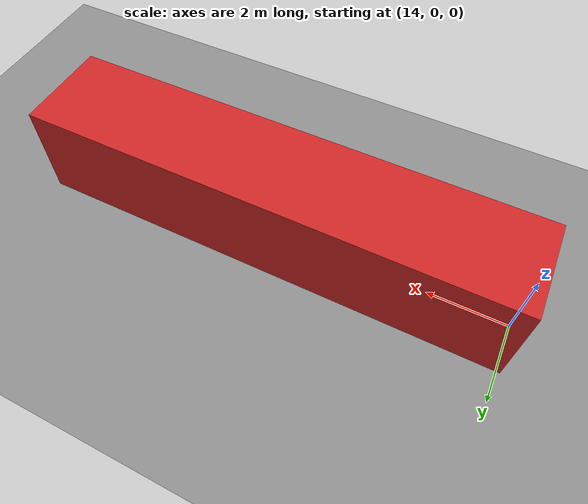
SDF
<?xml version="1.0"?>
<sdf version="1.10">
  <world name="port_yard">

    <!-- Physics -->
    <physics name="1ms" type="ignored">
      <max_step_size>0.001</max_step_size>
      <real_time_factor>1.0</real_time_factor>
    </physics>

    <!-- Required world-level plugins -->
    <plugin filename="gz-sim-physics-system"
            name="gz::sim::systems::Physics"/>
    <plugin filename="gz-sim-user-commands-system"
            name="gz::sim::systems::UserCommands"/>
    <plugin filename="gz-sim-scene-broadcaster-system"
            name="gz::sim::systems::SceneBroadcaster"/>
    <plugin filename="gz-sim-contact-system"
            name="gz::sim::systems::Contact"/>

    <!-- Sun — directional light -->
    <light name="sun" type="directional">
      <cast_shadows>true</cast_shadows>
      <pose>0 0 100 0 0 0</pose>
      <diffuse>1 1 1 1</diffuse>
      <specular>0.5 0.5 0.5 1</specular>
      <direction>-0.5 0.1 -0.9</direction>
    </light>

    <!-- Ground plane — 200 x 200 m grey concrete -->
    <model name="ground_plane">
      <static>true</static>
      <link name="link">
        <collision name="col">
          <geometry>
            <plane>
              <normal>0 0 1</normal>
              <size>200 200</size>
            </plane>
          </geometry>
          <surface>
            <friction>
              <ode>
                <mu>0.8</mu>
                <mu2>0.8</mu2>
              </ode>
            </friction>
          </surface>
        </collision>
        <visual name="vis">
          <geometry>
            <plane>
              <normal>0 0 1</normal>
              <size>200 200</size>
            </plane>
          </geometry>
          <material>
            <ambient>0.55 0.55 0.55 1</ambient>
            <diffuse>0.55 0.55 0.55 1</diffuse>
          </material>
        </visual>
      </link>
    </model>

    <!-- 40ft ISO container — interfaces.md §3: 12.192 x 2.438 x 2.591 m -->
    <model name="container_A1">
      <static>true</static>
      <pose>20 0 1.2955 0 0 0</pose>
      <link name="link">
        <collision name="col">
          <geometry>
            <box>
              <size>12.192 2.438 2.591</size>
            </box>
          </geometry>
        </collision>
        <visual name="vis">
          <geometry>
            <box>
              <size>12.192 2.438 2.591</size>
            </box>
          </geometry>
          <material>
            <ambient>0.8 0.15 0.15 1</ambient>
            <diffuse>0.8 0.15 0.15 1</diffuse>
          </material>
        </visual>
      </link>
    </model>

  </world>
</sdf>
